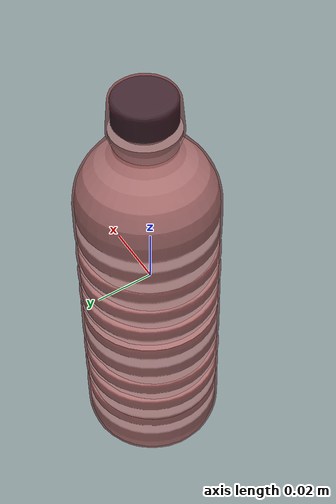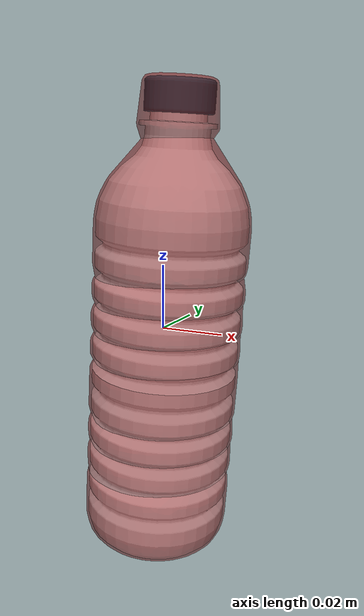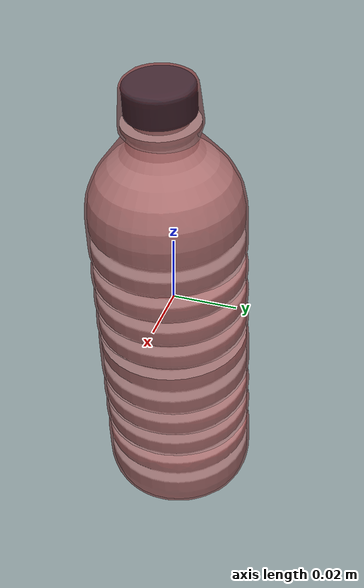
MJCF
<?xml version='1.0' encoding='utf-8'?>
<mujoco model="bottled_water_6">
  <asset>
    <mesh file="visual/model_normalized_0.obj" name="model_normalized_0_vis" scale="0.15 0.15 0.15" refquat="1.0 0.0 0.0 0.0" />
    <mesh file="visual/model_normalized_1.obj" name="model_normalized_1_vis" scale="0.15 0.15 0.15" refquat="1.0 0.0 0.0 0.0" />
    <material name="Material.035" specular="0.5" shininess="1.0" rgba="1.000000 1.000000 1.000000 1.0" />
    <material name="Material.036" specular="0.5" shininess="0.286086362" rgba="0.047428 0.346032 0.421978 1.0" />
    <mesh file="collision/collision_mesh_collision_0.obj" name="bottled_collision_mesh_0" scale="0.15 0.15 0.15" refquat="1.0 0.0 0.0 0.0" />
    <mesh file="collision/collision_mesh_collision_1.obj" name="bottled_collision_mesh_1" scale="0.15 0.15 0.15" refquat="1.0 0.0 0.0 0.0" />
    <mesh file="collision/collision_mesh_collision_2.obj" name="bottled_collision_mesh_2" scale="0.15 0.15 0.15" refquat="1.0 0.0 0.0 0.0" />
    <mesh file="collision/collision_mesh_collision_3.obj" name="bottled_collision_mesh_3" scale="0.15 0.15 0.15" refquat="1.0 0.0 0.0 0.0" />
    <mesh file="collision/collision_mesh_collision_4.obj" name="bottled_collision_mesh_4" scale="0.15 0.15 0.15" refquat="1.0 0.0 0.0 0.0" />
    <mesh file="collision/collision_mesh_collision_5.obj" name="bottled_collision_mesh_5" scale="0.15 0.15 0.15" refquat="1.0 0.0 0.0 0.0" />
    <mesh file="collision/collision_mesh_collision_6.obj" name="bottled_collision_mesh_6" scale="0.15 0.15 0.15" refquat="1.0 0.0 0.0 0.0" />
    <mesh file="collision/collision_mesh_collision_7.obj" name="bottled_collision_mesh_7" scale="0.15 0.15 0.15" refquat="1.0 0.0 0.0 0.0" />
    <mesh file="collision/collision_mesh_collision_8.obj" name="bottled_collision_mesh_8" scale="0.15 0.15 0.15" refquat="1.0 0.0 0.0 0.0" />
    </asset>
  <default>
    <default class="region">
      <geom group="1" conaffinity="0" contype="0" rgba="0 1 0 0" />
      </default>
    <default class="collision">
      <geom group="0" rgba="0.5 0 0 0.5" density="1000.0" />
      </default>
    </default>
  <worldbody>
    <body>
      <body name="object">
        <geom solimp="0.998 0.998 0.001" solref="0.001 1" density="100" friction="0.95 0.3 0.1" type="mesh" mesh="model_normalized_0_vis" conaffinity="0" contype="0" group="1" material="Material.036" />
        <geom solimp="0.998 0.998 0.001" solref="0.001 1" density="100" friction="0.95 0.3 0.1" type="mesh" mesh="model_normalized_1_vis" conaffinity="0" contype="0" group="1" material="Material.035" />
        <geom class="region" name="reg_bbox" type="box" pos="0.0005321902500000003 9.74662499999987e-05 2.7908249999999968e-05" size="0.0265637745 0.023675744999999998 0.07438023225" />
        <geom mesh="bottled_collision_mesh_0" type="mesh" class="collision" />
        <geom mesh="bottled_collision_mesh_1" type="mesh" class="collision" />
        <geom mesh="bottled_collision_mesh_2" type="mesh" class="collision" />
        <geom mesh="bottled_collision_mesh_3" type="mesh" class="collision" />
        <geom mesh="bottled_collision_mesh_4" type="mesh" class="collision" />
        <geom mesh="bottled_collision_mesh_5" type="mesh" class="collision" />
        <geom mesh="bottled_collision_mesh_6" type="mesh" class="collision" />
        <geom mesh="bottled_collision_mesh_7" type="mesh" class="collision" />
        <geom mesh="bottled_collision_mesh_8" type="mesh" class="collision" />
        </body>
      </body>
    </worldbody>
  </mujoco>
